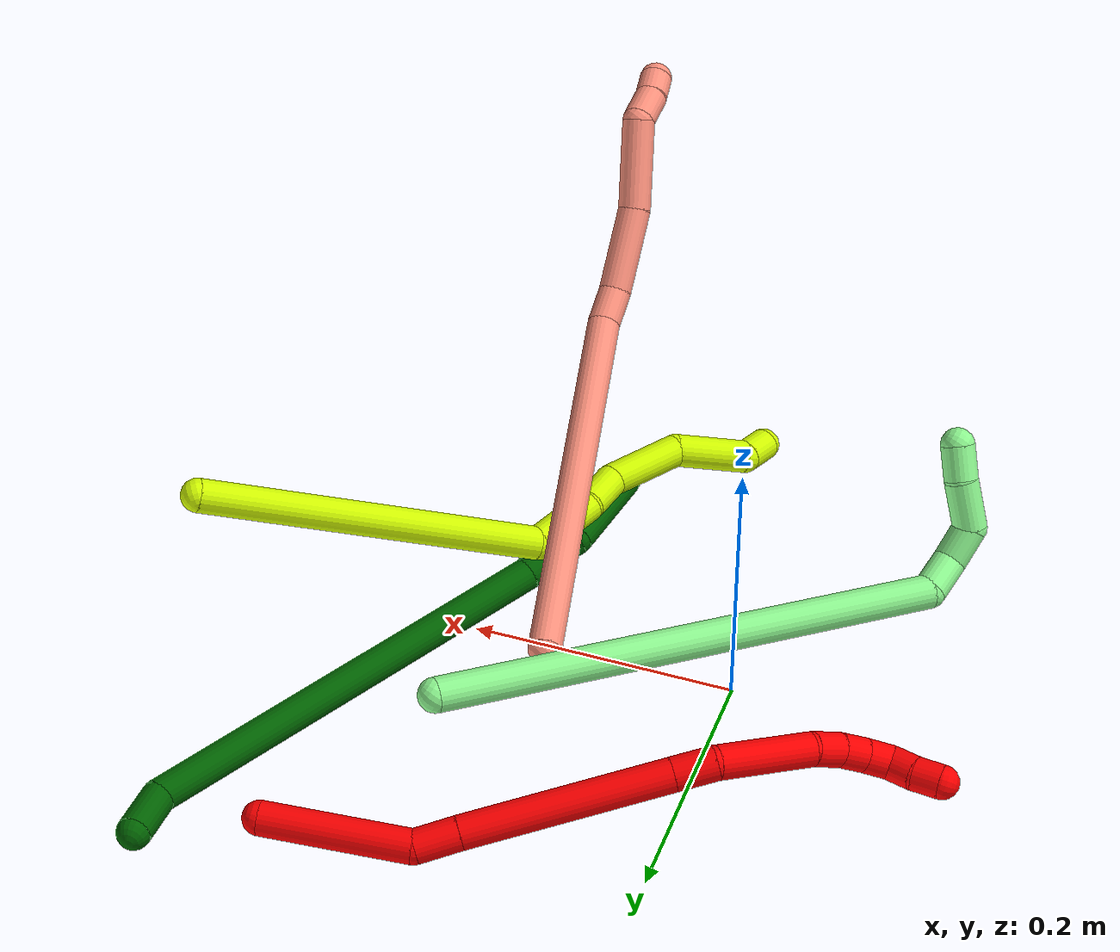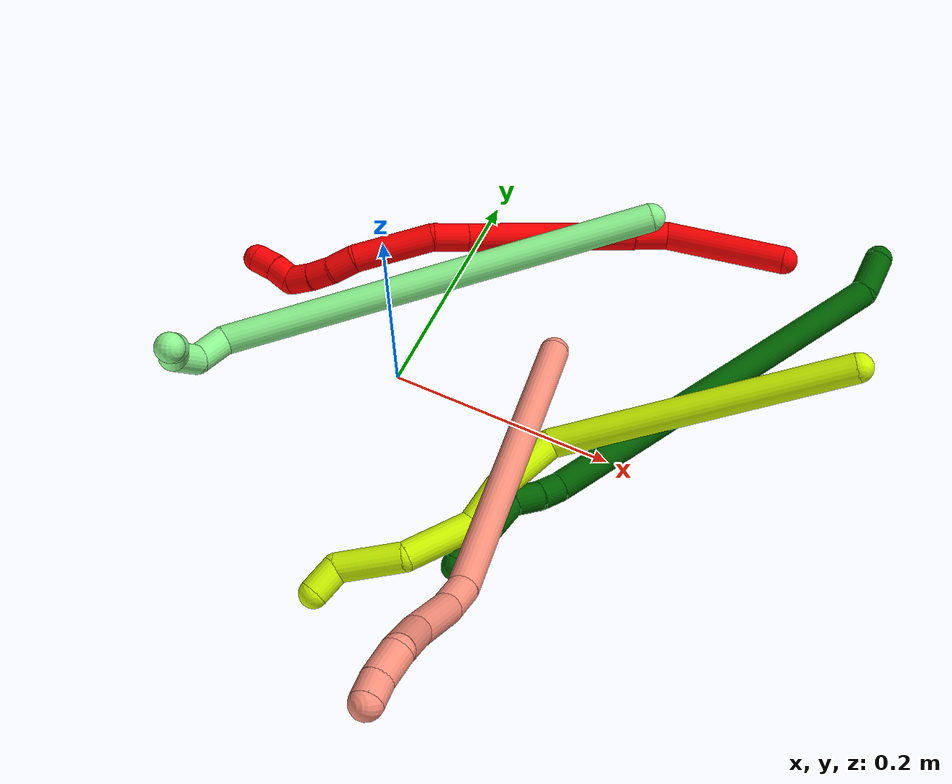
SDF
<sdf version="1.7">
 <world name="default">
  <model name="2">
   <static>0</static>
   <link name="2">
    <collision name="collision-cylinder-e_1_1_4">
     <pose>-0.016898 0.004487 -0.051456 -3.05461 -0.316178 2.6086</pose>
     <geometry><cylinder><radius>0.0125</radius><length>0.10869</length></cylinder></geometry>
     <surface>
      <friction><ode><mu>1.16</mu><mu2>1.16</mu2><slip1>0</slip1><slip2>0</slip2></ode></friction>
      <contact><ode><kp>1e+06</kp><kd>1</kd><max_vel>0</max_vel><min_depth>0.001</min_depth></ode></contact>
     </surface>
    </collision>
    <visual name="visual-cylinder-e_1_1_4">
     <pose>-0.016898 0.004487 -0.051456 -3.05461 -0.316178 2.6086</pose>
     <geometry><cylinder><radius>0.0125</radius><length>0.10869</length></cylinder></geometry>
     <material><ambient>1 0 0 1</ambient></material>
    </visual>
    <collision name="collision-cylinder-e_2_4_5">
     <pose>-0.041556 0.003245 -0.115933 2.72707 -0.499398 -1.76252</pose>
     <geometry><cylinder><radius>0.0125</radius><length>0.032411</length></cylinder></geometry>
     <surface>
      <friction><ode><mu>1.16</mu><mu2>1.16</mu2><slip1>0</slip1><slip2>0</slip2></ode></friction>
      <contact><ode><kp>1e+06</kp><kd>1</kd><max_vel>0</max_vel><min_depth>0.001</min_depth></ode></contact>
     </surface>
    </collision>
    <visual name="visual-cylinder-e_2_4_5">
     <pose>-0.041556 0.003245 -0.115933 2.72707 -0.499398 -1.76252</pose>
     <geometry><cylinder><radius>0.0125</radius><length>0.032411</length></cylinder></geometry>
     <material><ambient>1 0 0 1</ambient></material>
    </visual>
    <collision name="collision-cylinder-e_3_5_6">
     <pose>-0.084269 -0.027981 -0.191213 2.75291 -0.47914 -1.78506</pose>
     <geometry><cylinder><radius>0.0125</radius><length>0.151628</length></cylinder></geometry>
     <surface>
      <friction><ode><mu>1.16</mu><mu2>1.16</mu2><slip1>0</slip1><slip2>0</slip2></ode></friction>
      <contact><ode><kp>1e+06</kp><kd>1</kd><max_vel>0</max_vel><min_depth>0.001</min_depth></ode></contact>
     </surface>
    </collision>
    <visual name="visual-cylinder-e_3_5_6">
     <pose>-0.084269 -0.027981 -0.191213 2.75291 -0.47914 -1.78506</pose>
     <geometry><cylinder><radius>0.0125</radius><length>0.151628</length></cylinder></geometry>
     <material><ambient>1 0 0 1</ambient></material>
    </visual>
    <collision name="collision-cylinder-e_4_6_7">
     <pose>-0.126533 -0.058518 -0.266192 2.76421 -0.490837 -1.83879</pose>
     <geometry><cylinder><radius>0.0125</radius><length>0.03103</length></cylinder></geometry>
     <surface>
      <friction><ode><mu>1.16</mu><mu2>1.16</mu2><slip1>0</slip1><slip2>0</slip2></ode></friction>
      <contact><ode><kp>1e+06</kp><kd>1</kd><max_vel>0</max_vel><min_depth>0.001</min_depth></ode></contact>
     </surface>
    </collision>
    <visual name="visual-cylinder-e_4_6_7">
     <pose>-0.126533 -0.058518 -0.266192 2.76421 -0.490837 -1.83879</pose>
     <geometry><cylinder><radius>0.0125</radius><length>0.03103</length></cylinder></geometry>
     <material><ambient>1 0 0 1</ambient></material>
    </visual>
    <collision name="collision-cylinder-e_5_7_8">
     <pose>-0.140037 -0.078663 -0.310889 2.70036 -0.173305 -0.739108</pose>
     <geometry><cylinder><radius>0.0125</radius><length>0.071803</length></cylinder></geometry>
     <surface>
      <friction><ode><mu>1.16</mu><mu2>1.16</mu2><slip1>0</slip1><slip2>0</slip2></ode></friction>
      <contact><ode><kp>1e+06</kp><kd>1</kd><max_vel>0</max_vel><min_depth>0.001</min_depth></ode></contact>
     </surface>
    </collision>
    <visual name="visual-cylinder-e_5_7_8">
     <pose>-0.140037 -0.078663 -0.310889 2.70036 -0.173305 -0.739108</pose>
     <geometry><cylinder><radius>0.0125</radius><length>0.071803</length></cylinder></geometry>
     <material><ambient>1 0 0 1</ambient></material>
    </visual>
    <collision name="collision-cylinder-e_6_8_9">
     <pose>-0.145211 -0.098876 -0.353478 2.69275 0.086144 0.373226</pose>
     <geometry><cylinder><radius>0.0125</radius><length>0.023645</length></cylinder></geometry>
     <surface>
      <friction><ode><mu>1.16</mu><mu2>1.16</mu2><slip1>0</slip1><slip2>0</slip2></ode></friction>
      <contact><ode><kp>1e+06</kp><kd>1</kd><max_vel>0</max_vel><min_depth>0.001</min_depth></ode></contact>
     </surface>
    </collision>
    <visual name="visual-cylinder-e_6_8_9">
     <pose>-0.145211 -0.098876 -0.353478 2.69275 0.086144 0.373226</pose>
     <geometry><cylinder><radius>0.0125</radius><length>0.023645</length></cylinder></geometry>
     <material><ambient>1 0 0 1</ambient></material>
    </visual>
    <collision name="collision-cylinder-e_7_9_10">
     <pose>-0.143347 -0.106333 -0.373781 2.90402 0.08472 0.682484</pose>
     <geometry><cylinder><radius>0.0125</radius><length>0.020014</length></cylinder></geometry>
     <surface>
      <friction><ode><mu>1.16</mu><mu2>1.16</mu2><slip1>0</slip1><slip2>0</slip2></ode></friction>
      <contact><ode><kp>1e+06</kp><kd>1</kd><max_vel>0</max_vel><min_depth>0.001</min_depth></ode></contact>
     </surface>
    </collision>
    <visual name="visual-cylinder-e_7_9_10">
     <pose>-0.143347 -0.106333 -0.373781 2.90402 0.08472 0.682484</pose>
     <geometry><cylinder><radius>0.0125</radius><length>0.020014</length></cylinder></geometry>
     <material><ambient>1 0 0 1</ambient></material>
    </visual>
    <collision name="collision-cylinder-e_8_10_11">
     <pose>-0.142232 -0.109844 -0.393773 3.0291 0.025864 0.451533</pose>
     <geometry><cylinder><radius>0.0125</radius><length>0.020741</length></cylinder></geometry>
     <surface>
      <friction><ode><mu>1.16</mu><mu2>1.16</mu2><slip1>0</slip1><slip2>0</slip2></ode></friction>
      <contact><ode><kp>1e+06</kp><kd>1</kd><max_vel>0</max_vel><min_depth>0.001</min_depth></ode></contact>
     </surface>
    </collision>
    <visual name="visual-cylinder-e_8_10_11">
     <pose>-0.142232 -0.109844 -0.393773 3.0291 0.025864 0.451533</pose>
     <geometry><cylinder><radius>0.0125</radius><length>0.020741</length></cylinder></geometry>
     <material><ambient>1 0 0 1</ambient></material>
    </visual>
    <collision name="collision-cylinder-e_9_11_12">
     <pose>-0.145733 -0.106159 -0.411969 -2.59086 -0.38634 1.2111</pose>
     <geometry><cylinder><radius>0.0125</radius><length>0.020004</length></cylinder></geometry>
     <surface>
      <friction><ode><mu>1.16</mu><mu2>1.16</mu2><slip1>0</slip1><slip2>0</slip2></ode></friction>
      <contact><ode><kp>1e+06</kp><kd>1</kd><max_vel>0</max_vel><min_depth>0.001</min_depth></ode></contact>
     </surface>
    </collision>
    <visual name="visual-cylinder-e_9_11_12">
     <pose>-0.145733 -0.106159 -0.411969 -2.59086 -0.38634 1.2111</pose>
     <geometry><cylinder><radius>0.0125</radius><length>0.020004</length></cylinder></geometry>
     <material><ambient>1 0 0 1</ambient></material>
    </visual>
    <collision name="collision-cylinder-e_10_12_2">
     <pose>-0.153188 -0.09811 -0.428611 -2.79074 -0.376875 1.64387</pose>
     <geometry><cylinder><radius>0.0125</radius><length>0.020035</length></cylinder></geometry>
     <surface>
      <friction><ode><mu>1.16</mu><mu2>1.16</mu2><slip1>0</slip1><slip2>0</slip2></ode></friction>
      <contact><ode><kp>1e+06</kp><kd>1</kd><max_vel>0</max_vel><min_depth>0.001</min_depth></ode></contact>
     </surface>
    </collision>
    <visual name="visual-cylinder-e_10_12_2">
     <pose>-0.153188 -0.09811 -0.428611 -2.79074 -0.376875 1.64387</pose>
     <geometry><cylinder><radius>0.0125</radius><length>0.020035</length></cylinder></geometry>
     <material><ambient>1 0 0 1</ambient></material>
    </visual>
    <collision name="collision-sphere-2">
     <pose>-0.156875 -0.094908 -0.437358 0 -0 0</pose>
     <geometry><sphere><radius>0.0125</radius></sphere></geometry>
     <surface>
      <friction><ode><mu>1.16</mu><mu2>1.16</mu2><slip1>0</slip1><slip2>0</slip2></ode></friction>
      <contact><ode><kp>1e+06</kp><kd>1</kd><max_vel>0</max_vel><min_depth>0.001</min_depth></ode></contact>
     </surface>
    </collision>
    <visual name="visual-sphere-2">
     <pose>-0.156875 -0.094908 -0.437358 0 -0 0</pose>
     <geometry><sphere><radius>0.0125</radius></sphere></geometry>
     <material><ambient>1 0 0 1</ambient></material>
    </visual>
    <collision name="collision-sphere-12">
     <pose>-0.149501 -0.101311 -0.419864 0 -0 0</pose>
     <geometry><sphere><radius>0.0125</radius></sphere></geometry>
     <surface>
      <friction><ode><mu>1.16</mu><mu2>1.16</mu2><slip1>0</slip1><slip2>0</slip2></ode></friction>
      <contact><ode><kp>1e+06</kp><kd>1</kd><max_vel>0</max_vel><min_depth>0.001</min_depth></ode></contact>
     </surface>
    </collision>
    <visual name="visual-sphere-12">
     <pose>-0.149501 -0.101311 -0.419864 0 -0 0</pose>
     <geometry><sphere><radius>0.0125</radius></sphere></geometry>
     <material><ambient>1 0 0 1</ambient></material>
    </visual>
    <collision name="collision-sphere-11">
     <pose>-0.141964 -0.111008 -0.404074 0 -0 0</pose>
     <geometry><sphere><radius>0.0125</radius></sphere></geometry>
     <surface>
      <friction><ode><mu>1.16</mu><mu2>1.16</mu2><slip1>0</slip1><slip2>0</slip2></ode></friction>
      <contact><ode><kp>1e+06</kp><kd>1</kd><max_vel>0</max_vel><min_depth>0.001</min_depth></ode></contact>
     </surface>
    </collision>
    <visual name="visual-sphere-11">
     <pose>-0.141964 -0.111008 -0.404074 0 -0 0</pose>
     <geometry><sphere><radius>0.0125</radius></sphere></geometry>
     <material><ambient>1 0 0 1</ambient></material>
    </visual>
    <collision name="collision-sphere-10">
     <pose>-0.1425 -0.10868 -0.383472 0 -0 0</pose>
     <geometry><sphere><radius>0.0125</radius></sphere></geometry>
     <surface>
      <friction><ode><mu>1.16</mu><mu2>1.16</mu2><slip1>0</slip1><slip2>0</slip2></ode></friction>
      <contact><ode><kp>1e+06</kp><kd>1</kd><max_vel>0</max_vel><min_depth>0.001</min_depth></ode></contact>
     </surface>
    </collision>
    <visual name="visual-sphere-10">
     <pose>-0.1425 -0.10868 -0.383472 0 -0 0</pose>
     <geometry><sphere><radius>0.0125</radius></sphere></geometry>
     <material><ambient>1 0 0 1</ambient></material>
    </visual>
    <collision name="collision-sphere-9">
     <pose>-0.144194 -0.103987 -0.364089 0 -0 0</pose>
     <geometry><sphere><radius>0.0125</radius></sphere></geometry>
     <surface>
      <friction><ode><mu>1.16</mu><mu2>1.16</mu2><slip1>0</slip1><slip2>0</slip2></ode></friction>
      <contact><ode><kp>1e+06</kp><kd>1</kd><max_vel>0</max_vel><min_depth>0.001</min_depth></ode></contact>
     </surface>
    </collision>
    <visual name="visual-sphere-9">
     <pose>-0.144194 -0.103987 -0.364089 0 -0 0</pose>
     <geometry><sphere><radius>0.0125</radius></sphere></geometry>
     <material><ambient>1 0 0 1</ambient></material>
    </visual>
    <collision name="collision-sphere-4">
     <pose>-0.033796 0.008974 -0.102912 0 -0 0</pose>
     <geometry><sphere><radius>0.0125</radius></sphere></geometry>
     <surface>
      <friction><ode><mu>1.16</mu><mu2>1.16</mu2><slip1>0</slip1><slip2>0</slip2></ode></friction>
      <contact><ode><kp>1e+06</kp><kd>1</kd><max_vel>0</max_vel><min_depth>0.001</min_depth></ode></contact>
     </surface>
    </collision>
    <visual name="visual-sphere-4">
     <pose>-0.033796 0.008974 -0.102912 0 -0 0</pose>
     <geometry><sphere><radius>0.0125</radius></sphere></geometry>
     <material><ambient>1 0 0 1</ambient></material>
    </visual>
    <collision name="collision-sphere-1">
     <geometry><sphere><radius>0.0125</radius></sphere></geometry>
     <surface>
      <friction><ode><mu>1.16</mu><mu2>1.16</mu2><slip1>0</slip1><slip2>0</slip2></ode></friction>
      <contact><ode><kp>1e+06</kp><kd>1</kd><max_vel>0</max_vel><min_depth>0.001</min_depth></ode></contact>
     </surface>
    </collision>
    <visual name="visual-sphere-1">
     <geometry><sphere><radius>0.0125</radius></sphere></geometry>
     <material><ambient>1 0 0 1</ambient></material>
    </visual>
    <collision name="collision-sphere-8">
     <pose>-0.146228 -0.093765 -0.342866 0 -0 0</pose>
     <geometry><sphere><radius>0.0125</radius></sphere></geometry>
     <surface>
      <friction><ode><mu>1.16</mu><mu2>1.16</mu2><slip1>0</slip1><slip2>0</slip2></ode></friction>
      <contact><ode><kp>1e+06</kp><kd>1</kd><max_vel>0</max_vel><min_depth>0.001</min_depth></ode></contact>
     </surface>
    </collision>
    <visual name="visual-sphere-8">
     <pose>-0.146228 -0.093765 -0.342866 0 -0 0</pose>
     <geometry><sphere><radius>0.0125</radius></sphere></geometry>
     <material><ambient>1 0 0 1</ambient></material>
    </visual>
    <collision name="collision-sphere-5">
     <pose>-0.049317 -0.002485 -0.128954 0 -0 0</pose>
     <geometry><sphere><radius>0.0125</radius></sphere></geometry>
     <surface>
      <friction><ode><mu>1.16</mu><mu2>1.16</mu2><slip1>0</slip1><slip2>0</slip2></ode></friction>
      <contact><ode><kp>1e+06</kp><kd>1</kd><max_vel>0</max_vel><min_depth>0.001</min_depth></ode></contact>
     </surface>
    </collision>
    <visual name="visual-sphere-5">
     <pose>-0.049317 -0.002485 -0.128954 0 -0 0</pose>
     <geometry><sphere><radius>0.0125</radius></sphere></geometry>
     <material><ambient>1 0 0 1</ambient></material>
    </visual>
    <collision name="collision-sphere-6">
     <pose>-0.11922 -0.053476 -0.253472 0 -0 0</pose>
     <geometry><sphere><radius>0.0125</radius></sphere></geometry>
     <surface>
      <friction><ode><mu>1.16</mu><mu2>1.16</mu2><slip1>0</slip1><slip2>0</slip2></ode></friction>
      <contact><ode><kp>1e+06</kp><kd>1</kd><max_vel>0</max_vel><min_depth>0.001</min_depth></ode></contact>
     </surface>
    </collision>
    <visual name="visual-sphere-6">
     <pose>-0.11922 -0.053476 -0.253472 0 -0 0</pose>
     <geometry><sphere><radius>0.0125</radius></sphere></geometry>
     <material><ambient>1 0 0 1</ambient></material>
    </visual>
    <collision name="collision-sphere-7">
     <pose>-0.133847 -0.063561 -0.278912 0 -0 0</pose>
     <geometry><sphere><radius>0.0125</radius></sphere></geometry>
     <surface>
      <friction><ode><mu>1.16</mu><mu2>1.16</mu2><slip1>0</slip1><slip2>0</slip2></ode></friction>
      <contact><ode><kp>1e+06</kp><kd>1</kd><max_vel>0</max_vel><min_depth>0.001</min_depth></ode></contact>
     </surface>
    </collision>
    <visual name="visual-sphere-7">
     <pose>-0.133847 -0.063561 -0.278912 0 -0 0</pose>
     <geometry><sphere><radius>0.0125</radius></sphere></geometry>
     <material><ambient>1 0 0 1</ambient></material>
    </visual>
    <inertial>
     <pose>-0.090358 -0.043895 -0.21952 0 -0 0</pose>
     <mass>0.5</mass>
     <inertia>
      <ixx>-0.000359</ixx>
      <ixy>0</ixy>
      <ixz>0</ixz>
      <iyy>-5.1e-05</iyy>
      <iyz>0</iyz>
      <izz>0.000255</izz>
     </inertia>
    </inertial>
   </link>
   <pose>0.263051 0.247919 0.017394 -0.164417 1.19907 0.071028</pose>
  </model>
  <model name="6">
   <static>0</static>
   <link name="6">
    <collision name="collision-cylinder-e_1_1_4">
     <pose>-0.001685 -0.001278 -0.01918 3.07504 -0.087436 -1.84066</pose>
     <geometry><cylinder><radius>0.0125</radius><length>0.038592</length></cylinder></geometry>
     <surface>
      <friction><ode><mu>1.16</mu><mu2>1.16</mu2><slip1>0</slip1><slip2>0</slip2></ode></friction>
      <contact><ode><kp>1e+06</kp><kd>1</kd><max_vel>0</max_vel><min_depth>0.001</min_depth></ode></contact>
     </surface>
    </collision>
    <visual name="visual-cylinder-e_1_1_4">
     <pose>-0.001685 -0.001278 -0.01918 3.07504 -0.087436 -1.84066</pose>
     <geometry><cylinder><radius>0.0125</radius><length>0.038592</length></cylinder></geometry>
     <material><ambient>0 0.392157 0.003922 1</ambient></material>
    </visual>
    <collision name="collision-cylinder-e_2_4_5">
     <pose>-0.032809 -0.09292 -0.178607 2.56923 -0.174656 -0.578375</pose>
     <geometry><cylinder><radius>0.0125</radius><length>0.33883</length></cylinder></geometry>
     <surface>
      <friction><ode><mu>1.16</mu><mu2>1.16</mu2><slip1>0</slip1><slip2>0</slip2></ode></friction>
      <contact><ode><kp>1e+06</kp><kd>1</kd><max_vel>0</max_vel><min_depth>0.001</min_depth></ode></contact>
     </surface>
    </collision>
    <visual name="visual-cylinder-e_2_4_5">
     <pose>-0.032809 -0.09292 -0.178607 2.56923 -0.174656 -0.578375</pose>
     <geometry><cylinder><radius>0.0125</radius><length>0.33883</length></cylinder></geometry>
     <material><ambient>0 0.392157 0.003922 1</ambient></material>
    </visual>
    <collision name="collision-cylinder-e_3_5_6">
     <pose>-0.061722 -0.189911 -0.327107 2.46491 0.049733 0.141134</pose>
     <geometry><cylinder><radius>0.0125</radius><length>0.021196</length></cylinder></geometry>
     <surface>
      <friction><ode><mu>1.16</mu><mu2>1.16</mu2><slip1>0</slip1><slip2>0</slip2></ode></friction>
      <contact><ode><kp>1e+06</kp><kd>1</kd><max_vel>0</max_vel><min_depth>0.001</min_depth></ode></contact>
     </surface>
    </collision>
    <visual name="visual-cylinder-e_3_5_6">
     <pose>-0.061722 -0.189911 -0.327107 2.46491 0.049733 0.141134</pose>
     <geometry><cylinder><radius>0.0125</radius><length>0.021196</length></cylinder></geometry>
     <material><ambient>0 0.392157 0.003922 1</ambient></material>
    </visual>
    <collision name="collision-cylinder-e_4_6_7">
     <pose>-0.06037 -0.206637 -0.343926 2.27434 0.062232 0.134247</pose>
     <geometry><cylinder><radius>0.0125</radius><length>0.026535</length></cylinder></geometry>
     <surface>
      <friction><ode><mu>1.16</mu><mu2>1.16</mu2><slip1>0</slip1><slip2>0</slip2></ode></friction>
      <contact><ode><kp>1e+06</kp><kd>1</kd><max_vel>0</max_vel><min_depth>0.001</min_depth></ode></contact>
     </surface>
    </collision>
    <visual name="visual-cylinder-e_4_6_7">
     <pose>-0.06037 -0.206637 -0.343926 2.27434 0.062232 0.134247</pose>
     <geometry><cylinder><radius>0.0125</radius><length>0.026535</length></cylinder></geometry>
     <material><ambient>0 0.392157 0.003922 1</ambient></material>
    </visual>
    <collision name="collision-cylinder-e_5_7_2">
     <pose>-0.061177 -0.227115 -0.38841 2.86026 -0.043625 -0.305724</pose>
     <geometry><cylinder><radius>0.0125</radius><length>0.074847</length></cylinder></geometry>
     <surface>
      <friction><ode><mu>1.16</mu><mu2>1.16</mu2><slip1>0</slip1><slip2>0</slip2></ode></friction>
      <contact><ode><kp>1e+06</kp><kd>1</kd><max_vel>0</max_vel><min_depth>0.001</min_depth></ode></contact>
     </surface>
    </collision>
    <visual name="visual-cylinder-e_5_7_2">
     <pose>-0.061177 -0.227115 -0.38841 2.86026 -0.043625 -0.305724</pose>
     <geometry><cylinder><radius>0.0125</radius><length>0.074847</length></cylinder></geometry>
     <material><ambient>0 0.392157 0.003922 1</ambient></material>
    </visual>
    <collision name="collision-sphere-2">
     <pose>-0.062809 -0.237495 -0.424328 0 -0 0</pose>
     <geometry><sphere><radius>0.0125</radius></sphere></geometry>
     <surface>
      <friction><ode><mu>1.16</mu><mu2>1.16</mu2><slip1>0</slip1><slip2>0</slip2></ode></friction>
      <contact><ode><kp>1e+06</kp><kd>1</kd><max_vel>0</max_vel><min_depth>0.001</min_depth></ode></contact>
     </surface>
    </collision>
    <visual name="visual-sphere-2">
     <pose>-0.062809 -0.237495 -0.424328 0 -0 0</pose>
     <geometry><sphere><radius>0.0125</radius></sphere></geometry>
     <material><ambient>0 0.392157 0.003922 1</ambient></material>
    </visual>
    <collision name="collision-sphere-7">
     <pose>-0.059544 -0.216735 -0.352492 0 -0 0</pose>
     <geometry><sphere><radius>0.0125</radius></sphere></geometry>
     <surface>
      <friction><ode><mu>1.16</mu><mu2>1.16</mu2><slip1>0</slip1><slip2>0</slip2></ode></friction>
      <contact><ode><kp>1e+06</kp><kd>1</kd><max_vel>0</max_vel><min_depth>0.001</min_depth></ode></contact>
     </surface>
    </collision>
    <visual name="visual-sphere-7">
     <pose>-0.059544 -0.216735 -0.352492 0 -0 0</pose>
     <geometry><sphere><radius>0.0125</radius></sphere></geometry>
     <material><ambient>0 0.392157 0.003922 1</ambient></material>
    </visual>
    <collision name="collision-sphere-6">
     <pose>-0.061195 -0.19654 -0.33536 0 -0 0</pose>
     <geometry><sphere><radius>0.0125</radius></sphere></geometry>
     <surface>
      <friction><ode><mu>1.16</mu><mu2>1.16</mu2><slip1>0</slip1><slip2>0</slip2></ode></friction>
      <contact><ode><kp>1e+06</kp><kd>1</kd><max_vel>0</max_vel><min_depth>0.001</min_depth></ode></contact>
     </surface>
    </collision>
    <visual name="visual-sphere-6">
     <pose>-0.061195 -0.19654 -0.33536 0 -0 0</pose>
     <geometry><sphere><radius>0.0125</radius></sphere></geometry>
     <material><ambient>0 0.392157 0.003922 1</ambient></material>
    </visual>
    <collision name="collision-sphere-5">
     <pose>-0.062248 -0.183283 -0.318854 0 -0 0</pose>
     <geometry><sphere><radius>0.0125</radius></sphere></geometry>
     <surface>
      <friction><ode><mu>1.16</mu><mu2>1.16</mu2><slip1>0</slip1><slip2>0</slip2></ode></friction>
      <contact><ode><kp>1e+06</kp><kd>1</kd><max_vel>0</max_vel><min_depth>0.001</min_depth></ode></contact>
     </surface>
    </collision>
    <visual name="visual-sphere-5">
     <pose>-0.062248 -0.183283 -0.318854 0 -0 0</pose>
     <geometry><sphere><radius>0.0125</radius></sphere></geometry>
     <material><ambient>0 0.392157 0.003922 1</ambient></material>
    </visual>
    <collision name="collision-sphere-1">
     <geometry><sphere><radius>0.0125</radius></sphere></geometry>
     <surface>
      <friction><ode><mu>1.16</mu><mu2>1.16</mu2><slip1>0</slip1><slip2>0</slip2></ode></friction>
      <contact><ode><kp>1e+06</kp><kd>1</kd><max_vel>0</max_vel><min_depth>0.001</min_depth></ode></contact>
     </surface>
    </collision>
    <visual name="visual-sphere-1">
     <geometry><sphere><radius>0.0125</radius></sphere></geometry>
     <material><ambient>0 0.392157 0.003922 1</ambient></material>
    </visual>
    <collision name="collision-sphere-4">
     <pose>-0.00337 -0.002557 -0.03836 0 -0 0</pose>
     <geometry><sphere><radius>0.0125</radius></sphere></geometry>
     <surface>
      <friction><ode><mu>1.16</mu><mu2>1.16</mu2><slip1>0</slip1><slip2>0</slip2></ode></friction>
      <contact><ode><kp>1e+06</kp><kd>1</kd><max_vel>0</max_vel><min_depth>0.001</min_depth></ode></contact>
     </surface>
    </collision>
    <visual name="visual-sphere-4">
     <pose>-0.00337 -0.002557 -0.03836 0 -0 0</pose>
     <geometry><sphere><radius>0.0125</radius></sphere></geometry>
     <material><ambient>0 0.392157 0.003922 1</ambient></material>
    </visual>
    <inertial>
     <pose>-0.037342 -0.116081 -0.212777 0 -0 0</pose>
     <mass>0.5</mass>
     <inertia>
      <ixx>0.000949</ixx>
      <ixy>0</ixy>
      <ixz>0</ixz>
      <iyy>-0.003947</iyy>
      <iyz>0</iyz>
      <izz>0.002284</izz>
     </inertia>
    </inertial>
   </link>
   <pose>0.339483 0.286932 0.01486 -1.58827 -1.22518 0.11428</pose>
  </model>
  <model name="13">
   <static>0</static>
   <link name="13">
    <collision name="collision-cylinder-e_1_1_4">
     <pose>-0.12719 -0.053877 -0.128474 2.74451 -0.739936 -2.18449</pose>
     <geometry><cylinder><radius>0.0125</radius><length>0.377284</length></cylinder></geometry>
     <surface>
      <friction><ode><mu>1.16</mu><mu2>1.16</mu2><slip1>0</slip1><slip2>0</slip2></ode></friction>
      <contact><ode><kp>1e+06</kp><kd>1</kd><max_vel>0</max_vel><min_depth>0.001</min_depth></ode></contact>
     </surface>
    </collision>
    <visual name="visual-cylinder-e_1_1_4">
     <pose>-0.12719 -0.053877 -0.128474 2.74451 -0.739936 -2.18449</pose>
     <geometry><cylinder><radius>0.0125</radius><length>0.377284</length></cylinder></geometry>
     <material><ambient>0.564706 0.984314 0.572549 1</ambient></material>
    </visual>
    <collision name="collision-cylinder-e_2_4_5">
     <pose>-0.268258 -0.11494 -0.258193 1.7422 -1.08695 -1.24505</pose>
     <geometry><cylinder><radius>0.0125</radius><length>0.031355</length></cylinder></geometry>
     <surface>
      <friction><ode><mu>1.16</mu><mu2>1.16</mu2><slip1>0</slip1><slip2>0</slip2></ode></friction>
      <contact><ode><kp>1e+06</kp><kd>1</kd><max_vel>0</max_vel><min_depth>0.001</min_depth></ode></contact>
     </surface>
    </collision>
    <visual name="visual-cylinder-e_2_4_5">
     <pose>-0.268258 -0.11494 -0.258193 1.7422 -1.08695 -1.24505</pose>
     <geometry><cylinder><radius>0.0125</radius><length>0.031355</length></cylinder></geometry>
     <material><ambient>0.564706 0.984314 0.572549 1</ambient></material>
    </visual>
    <collision name="collision-cylinder-e_3_5_6">
     <pose>-0.29607 -0.119583 -0.258304 -1.15175 -1.37358 0.978436</pose>
     <geometry><cylinder><radius>0.0125</radius><length>0.028419</length></cylinder></geometry>
     <surface>
      <friction><ode><mu>1.16</mu><mu2>1.16</mu2><slip1>0</slip1><slip2>0</slip2></ode></friction>
      <contact><ode><kp>1e+06</kp><kd>1</kd><max_vel>0</max_vel><min_depth>0.001</min_depth></ode></contact>
     </surface>
    </collision>
    <visual name="visual-cylinder-e_3_5_6">
     <pose>-0.29607 -0.119583 -0.258304 -1.15175 -1.37358 0.978436</pose>
     <geometry><cylinder><radius>0.0125</radius><length>0.028419</length></cylinder></geometry>
     <material><ambient>0.564706 0.984314 0.572549 1</ambient></material>
    </visual>
    <collision name="collision-cylinder-e_4_6_7">
     <pose>-0.321823 -0.111653 -0.243809 -0.383211 -0.687072 0.138563</pose>
     <geometry><cylinder><radius>0.0125</radius><length>0.03727</length></cylinder></geometry>
     <surface>
      <friction><ode><mu>1.16</mu><mu2>1.16</mu2><slip1>0</slip1><slip2>0</slip2></ode></friction>
      <contact><ode><kp>1e+06</kp><kd>1</kd><max_vel>0</max_vel><min_depth>0.001</min_depth></ode></contact>
     </surface>
    </collision>
    <visual name="visual-cylinder-e_4_6_7">
     <pose>-0.321823 -0.111653 -0.243809 -0.383211 -0.687072 0.138563</pose>
     <geometry><cylinder><radius>0.0125</radius><length>0.03727</length></cylinder></geometry>
     <material><ambient>0.564706 0.984314 0.572549 1</ambient></material>
    </visual>
    <collision name="collision-cylinder-e_5_7_2">
     <pose>-0.34318 -0.104753 -0.22199 -0.17704 -0.837448 0.078956</pose>
     <geometry><cylinder><radius>0.0125</radius><length>0.025673</length></cylinder></geometry>
     <surface>
      <friction><ode><mu>1.16</mu><mu2>1.16</mu2><slip1>0</slip1><slip2>0</slip2></ode></friction>
      <contact><ode><kp>1e+06</kp><kd>1</kd><max_vel>0</max_vel><min_depth>0.001</min_depth></ode></contact>
     </surface>
    </collision>
    <visual name="visual-cylinder-e_5_7_2">
     <pose>-0.34318 -0.104753 -0.22199 -0.17704 -0.837448 0.078956</pose>
     <geometry><cylinder><radius>0.0125</radius><length>0.025673</length></cylinder></geometry>
     <material><ambient>0.564706 0.984314 0.572549 1</ambient></material>
    </visual>
    <collision name="collision-sphere-2">
     <pose>-0.352716 -0.10324 -0.213532 0 -0 0</pose>
     <geometry><sphere><radius>0.0125</radius></sphere></geometry>
     <surface>
      <friction><ode><mu>1.16</mu><mu2>1.16</mu2><slip1>0</slip1><slip2>0</slip2></ode></friction>
      <contact><ode><kp>1e+06</kp><kd>1</kd><max_vel>0</max_vel><min_depth>0.001</min_depth></ode></contact>
     </surface>
    </collision>
    <visual name="visual-sphere-2">
     <pose>-0.352716 -0.10324 -0.213532 0 -0 0</pose>
     <geometry><sphere><radius>0.0125</radius></sphere></geometry>
     <material><ambient>0.564706 0.984314 0.572549 1</ambient></material>
    </visual>
    <collision name="collision-sphere-7">
     <pose>-0.333643 -0.106266 -0.230448 0 -0 0</pose>
     <geometry><sphere><radius>0.0125</radius></sphere></geometry>
     <surface>
      <friction><ode><mu>1.16</mu><mu2>1.16</mu2><slip1>0</slip1><slip2>0</slip2></ode></friction>
      <contact><ode><kp>1e+06</kp><kd>1</kd><max_vel>0</max_vel><min_depth>0.001</min_depth></ode></contact>
     </surface>
    </collision>
    <visual name="visual-sphere-7">
     <pose>-0.333643 -0.106266 -0.230448 0 -0 0</pose>
     <geometry><sphere><radius>0.0125</radius></sphere></geometry>
     <material><ambient>0.564706 0.984314 0.572549 1</ambient></material>
    </visual>
    <collision name="collision-sphere-6">
     <pose>-0.310004 -0.11704 -0.257171 0 -0 0</pose>
     <geometry><sphere><radius>0.0125</radius></sphere></geometry>
     <surface>
      <friction><ode><mu>1.16</mu><mu2>1.16</mu2><slip1>0</slip1><slip2>0</slip2></ode></friction>
      <contact><ode><kp>1e+06</kp><kd>1</kd><max_vel>0</max_vel><min_depth>0.001</min_depth></ode></contact>
     </surface>
    </collision>
    <visual name="visual-sphere-6">
     <pose>-0.310004 -0.11704 -0.257171 0 -0 0</pose>
     <geometry><sphere><radius>0.0125</radius></sphere></geometry>
     <material><ambient>0.564706 0.984314 0.572549 1</ambient></material>
    </visual>
    <collision name="collision-sphere-5">
     <pose>-0.282135 -0.122126 -0.259437 0 -0 0</pose>
     <geometry><sphere><radius>0.0125</radius></sphere></geometry>
     <surface>
      <friction><ode><mu>1.16</mu><mu2>1.16</mu2><slip1>0</slip1><slip2>0</slip2></ode></friction>
      <contact><ode><kp>1e+06</kp><kd>1</kd><max_vel>0</max_vel><min_depth>0.001</min_depth></ode></contact>
     </surface>
    </collision>
    <visual name="visual-sphere-5">
     <pose>-0.282135 -0.122126 -0.259437 0 -0 0</pose>
     <geometry><sphere><radius>0.0125</radius></sphere></geometry>
     <material><ambient>0.564706 0.984314 0.572549 1</ambient></material>
    </visual>
    <collision name="collision-sphere-1">
     <geometry><sphere><radius>0.0125</radius></sphere></geometry>
     <surface>
      <friction><ode><mu>1.16</mu><mu2>1.16</mu2><slip1>0</slip1><slip2>0</slip2></ode></friction>
      <contact><ode><kp>1e+06</kp><kd>1</kd><max_vel>0</max_vel><min_depth>0.001</min_depth></ode></contact>
     </surface>
    </collision>
    <visual name="visual-sphere-1">
     <geometry><sphere><radius>0.0125</radius></sphere></geometry>
     <material><ambient>0.564706 0.984314 0.572549 1</ambient></material>
    </visual>
    <collision name="collision-sphere-4">
     <pose>-0.25438 -0.107754 -0.256949 0 -0 0</pose>
     <geometry><sphere><radius>0.0125</radius></sphere></geometry>
     <surface>
      <friction><ode><mu>1.16</mu><mu2>1.16</mu2><slip1>0</slip1><slip2>0</slip2></ode></friction>
      <contact><ode><kp>1e+06</kp><kd>1</kd><max_vel>0</max_vel><min_depth>0.001</min_depth></ode></contact>
     </surface>
    </collision>
    <visual name="visual-sphere-4">
     <pose>-0.25438 -0.107754 -0.256949 0 -0 0</pose>
     <geometry><sphere><radius>0.0125</radius></sphere></geometry>
     <material><ambient>0.564706 0.984314 0.572549 1</ambient></material>
    </visual>
    <inertial>
     <pose>-0.171233 -0.06836 -0.157387 0 -0 0</pose>
     <mass>0.5</mass>
     <inertia>
      <ixx>-0.004642</ixx>
      <ixy>0</ixy>
      <ixz>0</ixz>
      <iyy>0.000636</iyy>
      <iyz>0</iyz>
      <izz>0.004304</izz>
     </inertia>
    </inertial>
   </link>
   <pose>0.157952 0.179407 0.105775 0.922335 0.673235 1.10445</pose>
  </model>
  <model name="15">
   <static>0</static>
   <link name="15">
    <collision name="collision-cylinder-e_1_1_4">
     <pose>-0.102208 -0.072533 -0.031301 1.9782 -0.912782 -1.28264</pose>
     <geometry><cylinder><radius>0.0125</radius><length>0.258359</length></cylinder></geometry>
     <surface>
      <friction><ode><mu>1.16</mu><mu2>1.16</mu2><slip1>0</slip1><slip2>0</slip2></ode></friction>
      <contact><ode><kp>1e+06</kp><kd>1</kd><max_vel>0</max_vel><min_depth>0.001</min_depth></ode></contact>
     </surface>
    </collision>
    <visual name="visual-cylinder-e_1_1_4">
     <pose>-0.102208 -0.072533 -0.031301 1.9782 -0.912782 -1.28264</pose>
     <geometry><cylinder><radius>0.0125</radius><length>0.258359</length></cylinder></geometry>
     <material><ambient>0.835294 1 0 1</ambient></material>
    </visual>
    <collision name="collision-cylinder-e_2_4_5">
     <pose>-0.224693 -0.160653 -0.048694 0.842202 -0.770538 -0.359356</pose>
     <geometry><cylinder><radius>0.0125</radius><length>0.058225</length></cylinder></geometry>
     <surface>
      <friction><ode><mu>1.16</mu><mu2>1.16</mu2><slip1>0</slip1><slip2>0</slip2></ode></friction>
      <contact><ode><kp>1e+06</kp><kd>1</kd><max_vel>0</max_vel><min_depth>0.001</min_depth></ode></contact>
     </surface>
    </collision>
    <visual name="visual-cylinder-e_2_4_5">
     <pose>-0.224693 -0.160653 -0.048694 0.842202 -0.770538 -0.359356</pose>
     <geometry><cylinder><radius>0.0125</radius><length>0.058225</length></cylinder></geometry>
     <material><ambient>0.835294 1 0 1</ambient></material>
    </visual>
    <collision name="collision-cylinder-e_3_5_6">
     <pose>-0.254747 -0.188649 -0.023341 0.825857 -0.524918 -0.234328</pose>
     <geometry><cylinder><radius>0.0125</radius><length>0.039019</length></cylinder></geometry>
     <surface>
      <friction><ode><mu>1.16</mu><mu2>1.16</mu2><slip1>0</slip1><slip2>0</slip2></ode></friction>
      <contact><ode><kp>1e+06</kp><kd>1</kd><max_vel>0</max_vel><min_depth>0.001</min_depth></ode></contact>
     </surface>
    </collision>
    <visual name="visual-cylinder-e_3_5_6">
     <pose>-0.254747 -0.188649 -0.023341 0.825857 -0.524918 -0.234328</pose>
     <geometry><cylinder><radius>0.0125</radius><length>0.039019</length></cylinder></geometry>
     <material><ambient>0.835294 1 0 1</ambient></material>
    </visual>
    <collision name="collision-cylinder-e_4_6_7">
     <pose>-0.290284 -0.214528 -0.003389 1.00748 -1.01699 -0.596118</pose>
     <geometry><cylinder><radius>0.0125</radius><length>0.060574</length></cylinder></geometry>
     <surface>
      <friction><ode><mu>1.16</mu><mu2>1.16</mu2><slip1>0</slip1><slip2>0</slip2></ode></friction>
      <contact><ode><kp>1e+06</kp><kd>1</kd><max_vel>0</max_vel><min_depth>0.001</min_depth></ode></contact>
     </surface>
    </collision>
    <visual name="visual-cylinder-e_4_6_7">
     <pose>-0.290284 -0.214528 -0.003389 1.00748 -1.01699 -0.596118</pose>
     <geometry><cylinder><radius>0.0125</radius><length>0.060574</length></cylinder></geometry>
     <material><ambient>0.835294 1 0 1</ambient></material>
    </visual>
    <collision name="collision-cylinder-e_5_7_8">
     <pose>-0.340075 -0.241703 -0.001412 2.01528 -1.00732 -1.4352</pose>
     <geometry><cylinder><radius>0.0125</radius><length>0.056851</length></cylinder></geometry>
     <surface>
      <friction><ode><mu>1.16</mu><mu2>1.16</mu2><slip1>0</slip1><slip2>0</slip2></ode></friction>
      <contact><ode><kp>1e+06</kp><kd>1</kd><max_vel>0</max_vel><min_depth>0.001</min_depth></ode></contact>
     </surface>
    </collision>
    <visual name="visual-cylinder-e_5_7_8">
     <pose>-0.340075 -0.241703 -0.001412 2.01528 -1.00732 -1.4352</pose>
     <geometry><cylinder><radius>0.0125</radius><length>0.056851</length></cylinder></geometry>
     <material><ambient>0.835294 1 0 1</ambient></material>
    </visual>
    <collision name="collision-cylinder-e_6_8_2">
     <pose>-0.37187 -0.264687 -0.001978 0.99946 -0.613449 -0.342442</pose>
     <geometry><cylinder><radius>0.0125</radius><length>0.026972</length></cylinder></geometry>
     <surface>
      <friction><ode><mu>1.16</mu><mu2>1.16</mu2><slip1>0</slip1><slip2>0</slip2></ode></friction>
      <contact><ode><kp>1e+06</kp><kd>1</kd><max_vel>0</max_vel><min_depth>0.001</min_depth></ode></contact>
     </surface>
    </collision>
    <visual name="visual-cylinder-e_6_8_2">
     <pose>-0.37187 -0.264687 -0.001978 0.99946 -0.613449 -0.342442</pose>
     <geometry><cylinder><radius>0.0125</radius><length>0.026972</length></cylinder></geometry>
     <material><ambient>0.835294 1 0 1</ambient></material>
    </visual>
    <collision name="collision-sphere-2">
     <pose>-0.379634 -0.273963 0.003985 0 -0 0</pose>
     <geometry><sphere><radius>0.0125</radius></sphere></geometry>
     <surface>
      <friction><ode><mu>1.16</mu><mu2>1.16</mu2><slip1>0</slip1><slip2>0</slip2></ode></friction>
      <contact><ode><kp>1e+06</kp><kd>1</kd><max_vel>0</max_vel><min_depth>0.001</min_depth></ode></contact>
     </surface>
    </collision>
    <visual name="visual-sphere-2">
     <pose>-0.379634 -0.273963 0.003985 0 -0 0</pose>
     <geometry><sphere><radius>0.0125</radius></sphere></geometry>
     <material><ambient>0.835294 1 0 1</ambient></material>
    </visual>
    <collision name="collision-sphere-4">
     <pose>-0.204415 -0.145067 -0.062603 0 -0 0</pose>
     <geometry><sphere><radius>0.0125</radius></sphere></geometry>
     <surface>
      <friction><ode><mu>1.16</mu><mu2>1.16</mu2><slip1>0</slip1><slip2>0</slip2></ode></friction>
      <contact><ode><kp>1e+06</kp><kd>1</kd><max_vel>0</max_vel><min_depth>0.001</min_depth></ode></contact>
     </surface>
    </collision>
    <visual name="visual-sphere-4">
     <pose>-0.204415 -0.145067 -0.062603 0 -0 0</pose>
     <geometry><sphere><radius>0.0125</radius></sphere></geometry>
     <material><ambient>0.835294 1 0 1</ambient></material>
    </visual>
    <collision name="collision-sphere-1">
     <geometry><sphere><radius>0.0125</radius></sphere></geometry>
     <surface>
      <friction><ode><mu>1.16</mu><mu2>1.16</mu2><slip1>0</slip1><slip2>0</slip2></ode></friction>
      <contact><ode><kp>1e+06</kp><kd>1</kd><max_vel>0</max_vel><min_depth>0.001</min_depth></ode></contact>
     </surface>
    </collision>
    <visual name="visual-sphere-1">
     <geometry><sphere><radius>0.0125</radius></sphere></geometry>
     <material><ambient>0.835294 1 0 1</ambient></material>
    </visual>
    <collision name="collision-sphere-8">
     <pose>-0.364106 -0.255411 -0.007941 0 -0 0</pose>
     <geometry><sphere><radius>0.0125</radius></sphere></geometry>
     <surface>
      <friction><ode><mu>1.16</mu><mu2>1.16</mu2><slip1>0</slip1><slip2>0</slip2></ode></friction>
      <contact><ode><kp>1e+06</kp><kd>1</kd><max_vel>0</max_vel><min_depth>0.001</min_depth></ode></contact>
     </surface>
    </collision>
    <visual name="visual-sphere-8">
     <pose>-0.364106 -0.255411 -0.007941 0 -0 0</pose>
     <geometry><sphere><radius>0.0125</radius></sphere></geometry>
     <material><ambient>0.835294 1 0 1</ambient></material>
    </visual>
    <collision name="collision-sphere-5">
     <pose>-0.24497 -0.176238 -0.034786 0 -0 0</pose>
     <geometry><sphere><radius>0.0125</radius></sphere></geometry>
     <surface>
      <friction><ode><mu>1.16</mu><mu2>1.16</mu2><slip1>0</slip1><slip2>0</slip2></ode></friction>
      <contact><ode><kp>1e+06</kp><kd>1</kd><max_vel>0</max_vel><min_depth>0.001</min_depth></ode></contact>
     </surface>
    </collision>
    <visual name="visual-sphere-5">
     <pose>-0.24497 -0.176238 -0.034786 0 -0 0</pose>
     <geometry><sphere><radius>0.0125</radius></sphere></geometry>
     <material><ambient>0.835294 1 0 1</ambient></material>
    </visual>
    <collision name="collision-sphere-6">
     <pose>-0.264524 -0.20106 -0.011895 0 -0 0</pose>
     <geometry><sphere><radius>0.0125</radius></sphere></geometry>
     <surface>
      <friction><ode><mu>1.16</mu><mu2>1.16</mu2><slip1>0</slip1><slip2>0</slip2></ode></friction>
      <contact><ode><kp>1e+06</kp><kd>1</kd><max_vel>0</max_vel><min_depth>0.001</min_depth></ode></contact>
     </surface>
    </collision>
    <visual name="visual-sphere-6">
     <pose>-0.264524 -0.20106 -0.011895 0 -0 0</pose>
     <geometry><sphere><radius>0.0125</radius></sphere></geometry>
     <material><ambient>0.835294 1 0 1</ambient></material>
    </visual>
    <collision name="collision-sphere-7">
     <pose>-0.316045 -0.227996 0.005117 0 -0 0</pose>
     <geometry><sphere><radius>0.0125</radius></sphere></geometry>
     <surface>
      <friction><ode><mu>1.16</mu><mu2>1.16</mu2><slip1>0</slip1><slip2>0</slip2></ode></friction>
      <contact><ode><kp>1e+06</kp><kd>1</kd><max_vel>0</max_vel><min_depth>0.001</min_depth></ode></contact>
     </surface>
    </collision>
    <visual name="visual-sphere-7">
     <pose>-0.316045 -0.227996 0.005117 0 -0 0</pose>
     <geometry><sphere><radius>0.0125</radius></sphere></geometry>
     <material><ambient>0.835294 1 0 1</ambient></material>
    </visual>
    <inertial>
     <pose>-0.192753 -0.138659 -0.024344 0 -0 0</pose>
     <mass>0.5</mass>
     <inertia><ixx>-0.000618</ixx><ixy>0</ixy><ixz>0</ixz><iyy>4e-06</iyy><iyz>0</iyz><izz>0.002042</izz></inertia>
    </inertial>
   </link>
   <pose>0.375795 0.085818 0.147166 1.06778 0.329136 0.465809</pose>
  </model>
  <model name="16">
   <static>0</static>
   <link name="16">
    <collision name="collision-cylinder-e_1_1_4">
     <pose>0.014756 -0.094507 0.108391 0.717075 0.102251 0.038346</pose>
     <geometry><cylinder><radius>0.0125</radius><length>0.289123</length></cylinder></geometry>
     <surface>
      <friction><ode><mu>1.16</mu><mu2>1.16</mu2><slip1>0</slip1><slip2>0</slip2></ode></friction>
      <contact><ode><kp>1e+06</kp><kd>1</kd><max_vel>0</max_vel><min_depth>0.001</min_depth></ode></contact>
     </surface>
    </collision>
    <visual name="visual-cylinder-e_1_1_4">
     <pose>0.014756 -0.094507 0.108391 0.717075 0.102251 0.038346</pose>
     <geometry><cylinder><radius>0.0125</radius><length>0.289123</length></cylinder></geometry>
     <material><ambient>1 0.576471 0.494118 1</ambient></material>
    </visual>
    <collision name="collision-cylinder-e_2_4_5">
     <pose>0.031388 -0.19528 0.229682 0.45221 0.130096 0.029967</pose>
     <geometry><cylinder><radius>0.0125</radius><length>0.028925</length></cylinder></geometry>
     <surface>
      <friction><ode><mu>1.16</mu><mu2>1.16</mu2><slip1>0</slip1><slip2>0</slip2></ode></friction>
      <contact><ode><kp>1e+06</kp><kd>1</kd><max_vel>0</max_vel><min_depth>0.001</min_depth></ode></contact>
     </surface>
    </collision>
    <visual name="visual-cylinder-e_2_4_5">
     <pose>0.031388 -0.19528 0.229682 0.45221 0.130096 0.029967</pose>
     <geometry><cylinder><radius>0.0125</radius><length>0.028925</length></cylinder></geometry>
     <material><ambient>1 0.576471 0.494118 1</ambient></material>
    </visual>
    <collision name="collision-cylinder-e_3_5_6">
     <pose>0.045142 -0.209152 0.272281 0.250688 0.369607 0.047101</pose>
     <geometry><cylinder><radius>0.0125</radius><length>0.065758</length></cylinder></geometry>
     <surface>
      <friction><ode><mu>1.16</mu><mu2>1.16</mu2><slip1>0</slip1><slip2>0</slip2></ode></friction>
      <contact><ode><kp>1e+06</kp><kd>1</kd><max_vel>0</max_vel><min_depth>0.001</min_depth></ode></contact>
     </surface>
    </collision>
    <visual name="visual-cylinder-e_3_5_6">
     <pose>0.045142 -0.209152 0.272281 0.250688 0.369607 0.047101</pose>
     <geometry><cylinder><radius>0.0125</radius><length>0.065758</length></cylinder></geometry>
     <material><ambient>1 0.576471 0.494118 1</ambient></material>
    </visual>
    <collision name="collision-cylinder-e_4_6_7">
     <pose>0.076257 -0.223925 0.329847 0.251746 0.589354 0.076777</pose>
     <geometry><cylinder><radius>0.0125</radius><length>0.069224</length></cylinder></geometry>
     <surface>
      <friction><ode><mu>1.16</mu><mu2>1.16</mu2><slip1>0</slip1><slip2>0</slip2></ode></friction>
      <contact><ode><kp>1e+06</kp><kd>1</kd><max_vel>0</max_vel><min_depth>0.001</min_depth></ode></contact>
     </surface>
    </collision>
    <visual name="visual-cylinder-e_4_6_7">
     <pose>0.076257 -0.223925 0.329847 0.251746 0.589354 0.076777</pose>
     <geometry><cylinder><radius>0.0125</radius><length>0.069224</length></cylinder></geometry>
     <material><ambient>1 0.576471 0.494118 1</ambient></material>
    </visual>
    <collision name="collision-cylinder-e_5_7_8">
     <pose>0.094012 -0.238727 0.36863 0.610338 -0.110878 -0.03496</pose>
     <geometry><cylinder><radius>0.0125</radius><length>0.026809</length></cylinder></geometry>
     <surface>
      <friction><ode><mu>1.16</mu><mu2>1.16</mu2><slip1>0</slip1><slip2>0</slip2></ode></friction>
      <contact><ode><kp>1e+06</kp><kd>1</kd><max_vel>0</max_vel><min_depth>0.001</min_depth></ode></contact>
     </surface>
    </collision>
    <visual name="visual-cylinder-e_5_7_8">
     <pose>0.094012 -0.238727 0.36863 0.610338 -0.110878 -0.03496</pose>
     <geometry><cylinder><radius>0.0125</radius><length>0.026809</length></cylinder></geometry>
     <material><ambient>1 0.576471 0.494118 1</ambient></material>
    </visual>
    <collision name="collision-cylinder-e_6_8_2">
     <pose>0.092864 -0.252911 0.387204 0.707486 0.033294 0.012296</pose>
     <geometry><cylinder><radius>0.0125</radius><length>0.020161</length></cylinder></geometry>
     <surface>
      <friction><ode><mu>1.16</mu><mu2>1.16</mu2><slip1>0</slip1><slip2>0</slip2></ode></friction>
      <contact><ode><kp>1e+06</kp><kd>1</kd><max_vel>0</max_vel><min_depth>0.001</min_depth></ode></contact>
     </surface>
    </collision>
    <visual name="visual-cylinder-e_6_8_2">
     <pose>0.092864 -0.252911 0.387204 0.707486 0.033294 0.012296</pose>
     <geometry><cylinder><radius>0.0125</radius><length>0.020161</length></cylinder></geometry>
     <material><ambient>1 0.576471 0.494118 1</ambient></material>
    </visual>
    <collision name="collision-sphere-2">
     <pose>0.0932 -0.259459 0.394861 0 -0 0</pose>
     <geometry><sphere><radius>0.0125</radius></sphere></geometry>
     <surface>
      <friction><ode><mu>1.16</mu><mu2>1.16</mu2><slip1>0</slip1><slip2>0</slip2></ode></friction>
      <contact><ode><kp>1e+06</kp><kd>1</kd><max_vel>0</max_vel><min_depth>0.001</min_depth></ode></contact>
     </surface>
    </collision>
    <visual name="visual-sphere-2">
     <pose>0.0932 -0.259459 0.394861 0 -0 0</pose>
     <geometry><sphere><radius>0.0125</radius></sphere></geometry>
     <material><ambient>1 0.576471 0.494118 1</ambient></material>
    </visual>
    <collision name="collision-sphere-4">
     <pose>0.029512 -0.189014 0.216783 0 -0 0</pose>
     <geometry><sphere><radius>0.0125</radius></sphere></geometry>
     <surface>
      <friction><ode><mu>1.16</mu><mu2>1.16</mu2><slip1>0</slip1><slip2>0</slip2></ode></friction>
      <contact><ode><kp>1e+06</kp><kd>1</kd><max_vel>0</max_vel><min_depth>0.001</min_depth></ode></contact>
     </surface>
    </collision>
    <visual name="visual-sphere-4">
     <pose>0.029512 -0.189014 0.216783 0 -0 0</pose>
     <geometry><sphere><radius>0.0125</radius></sphere></geometry>
     <material><ambient>1 0.576471 0.494118 1</ambient></material>
    </visual>
    <collision name="collision-sphere-1">
     <geometry><sphere><radius>0.0125</radius></sphere></geometry>
     <surface>
      <friction><ode><mu>1.16</mu><mu2>1.16</mu2><slip1>0</slip1><slip2>0</slip2></ode></friction>
      <contact><ode><kp>1e+06</kp><kd>1</kd><max_vel>0</max_vel><min_depth>0.001</min_depth></ode></contact>
     </surface>
    </collision>
    <visual name="visual-sphere-1">
     <geometry><sphere><radius>0.0125</radius></sphere></geometry>
     <material><ambient>1 0.576471 0.494118 1</ambient></material>
    </visual>
    <collision name="collision-sphere-8">
     <pose>0.092529 -0.246363 0.379547 0 -0 0</pose>
     <geometry><sphere><radius>0.0125</radius></sphere></geometry>
     <surface>
      <friction><ode><mu>1.16</mu><mu2>1.16</mu2><slip1>0</slip1><slip2>0</slip2></ode></friction>
      <contact><ode><kp>1e+06</kp><kd>1</kd><max_vel>0</max_vel><min_depth>0.001</min_depth></ode></contact>
     </surface>
    </collision>
    <visual name="visual-sphere-8">
     <pose>0.092529 -0.246363 0.379547 0 -0 0</pose>
     <geometry><sphere><radius>0.0125</radius></sphere></geometry>
     <material><ambient>1 0.576471 0.494118 1</ambient></material>
    </visual>
    <collision name="collision-sphere-5">
     <pose>0.033264 -0.201546 0.242581 0 -0 0</pose>
     <geometry><sphere><radius>0.0125</radius></sphere></geometry>
     <surface>
      <friction><ode><mu>1.16</mu><mu2>1.16</mu2><slip1>0</slip1><slip2>0</slip2></ode></friction>
      <contact><ode><kp>1e+06</kp><kd>1</kd><max_vel>0</max_vel><min_depth>0.001</min_depth></ode></contact>
     </surface>
    </collision>
    <visual name="visual-sphere-5">
     <pose>0.033264 -0.201546 0.242581 0 -0 0</pose>
     <geometry><sphere><radius>0.0125</radius></sphere></geometry>
     <material><ambient>1 0.576471 0.494118 1</ambient></material>
    </visual>
    <collision name="collision-sphere-6">
     <pose>0.057019 -0.216757 0.301982 0 -0 0</pose>
     <geometry><sphere><radius>0.0125</radius></sphere></geometry>
     <surface>
      <friction><ode><mu>1.16</mu><mu2>1.16</mu2><slip1>0</slip1><slip2>0</slip2></ode></friction>
      <contact><ode><kp>1e+06</kp><kd>1</kd><max_vel>0</max_vel><min_depth>0.001</min_depth></ode></contact>
     </surface>
    </collision>
    <visual name="visual-sphere-6">
     <pose>0.057019 -0.216757 0.301982 0 -0 0</pose>
     <geometry><sphere><radius>0.0125</radius></sphere></geometry>
     <material><ambient>1 0.576471 0.494118 1</ambient></material>
    </visual>
    <collision name="collision-sphere-7">
     <pose>0.095495 -0.231092 0.357713 0 -0 0</pose>
     <geometry><sphere><radius>0.0125</radius></sphere></geometry>
     <surface>
      <friction><ode><mu>1.16</mu><mu2>1.16</mu2><slip1>0</slip1><slip2>0</slip2></ode></friction>
      <contact><ode><kp>1e+06</kp><kd>1</kd><max_vel>0</max_vel><min_depth>0.001</min_depth></ode></contact>
     </surface>
    </collision>
    <visual name="visual-sphere-7">
     <pose>0.095495 -0.231092 0.357713 0 -0 0</pose>
     <geometry><sphere><radius>0.0125</radius></sphere></geometry>
     <material><ambient>1 0.576471 0.494118 1</ambient></material>
    </visual>
    <inertial>
     <pose>0.035628 -0.147452 0.192818 0 -0 0</pose>
     <mass>0.5</mass>
     <inertia>
      <ixx>0.002158</ixx>
      <ixy>0</ixy>
      <ixz>0</ixz>
      <iyy>0.001652</iyy>
      <iyz>0</iyz>
      <izz>0.001138</izz>
     </inertia>
    </inertial>
   </link>
   <pose>0.125587 0.053339 0.049675 0.499212 -0.819304 0.376034</pose>
  </model>
 </world>
</sdf>
